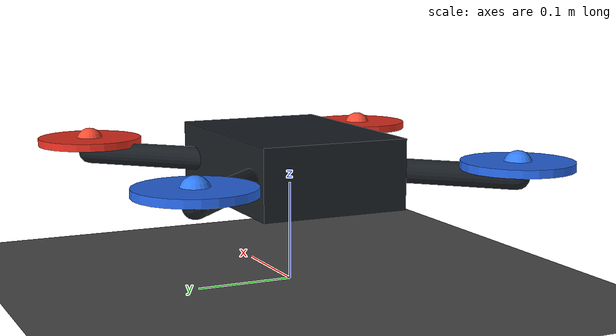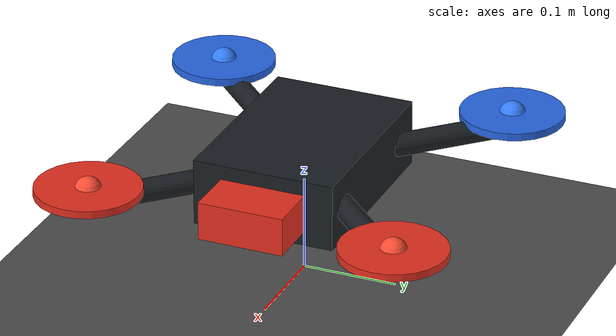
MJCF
<mujoco model="minimal_x_quadrotor_m1">
  <compiler angle="degree" autolimits="true"/>
  <!-- 控制迴圈與物理積分共用 0.002 s timestep，也就是 500 Hz。 -->
  <!-- M1：density/viscosity 啟用 MuJoCo 內建流體交互（等效橢球近似），
       對所有機體 geom 施加與速度反向的阻力與黏性項；不含槳葉尾流、
       地面效應或升力模型。這只是溫和的空氣阻尼，不是精確氣動模型。 -->
  <option timestep="0.002" gravity="0 0 -9.81" integrator="RK4"
          density="1.2" viscosity="1.8e-5"/>

  <visual>
    <headlight ambient="0.35 0.35 0.35" diffuse="0.75 0.75 0.75" specular="0.2 0.2 0.2"/>
    <rgba haze="0.15 0.25 0.35 1"/>
    <global azimuth="135" elevation="-22"/>
  </visual>

  <asset>
    <texture name="sky" type="skybox" builtin="gradient" rgb1="0.18 0.28 0.40" rgb2="0.02 0.03 0.05" width="512" height="3072"/>
    <texture name="grid" type="2d" builtin="checker" rgb1="0.25 0.25 0.25" rgb2="0.35 0.35 0.35" width="512" height="512"/>
    <material name="ground_material" texture="grid" texrepeat="10 10" reflectance="0.08"/>
    <material name="carbon" rgba="0.10 0.12 0.14 1"/>
    <material name="front" rgba="0.90 0.18 0.12 1"/>
    <material name="rear" rgba="0.15 0.40 0.90 1"/>
  </asset>

  <worldbody>
    <light pos="0 0 5" dir="0 0 -1" directional="true"/>
    <geom name="ground" type="plane" size="12 12 0.1" material="ground_material" friction="1 0.005 0.0001"/>

    <!-- 機體座標：+X 朝紅色機鼻、+Y 朝左、+Z 朝上；控制器也遵守此約定。 -->
    <body name="quadrotor" pos="0 0 0.12">
      <freejoint name="root"/>
      <!-- 明確指定 1 kg 質量與主軸慣量，避免 MuJoCo 從外觀 geom 反推。 -->
      <inertial pos="0 0 0" mass="1.0" diaginertia="0.018 0.018 0.030"/>

      <geom name="fuselage" type="box" size="0.105 0.075 0.035" material="carbon"/>
      <geom name="arm_fl_rr" type="capsule" fromto="-0.163 -0.163 0 0.163 0.163 0" size="0.012" material="carbon"/>
      <geom name="arm_fr_rl" type="capsule" fromto="-0.163 0.163 0 0.163 -0.163 0" size="0.012" material="carbon"/>

      <!-- 紅色機鼻只用於辨認 +X，方便觀察 WASD 是否依當前 yaw 移動。 -->
      <geom name="nose" type="box" pos="0.125 0 0" size="0.035 0.045 0.020" material="front"/>

      <!-- prop_* 只負責外觀；真正的力施加在下方同位置的 rotor_*_site。 -->
      <geom name="prop_fl" type="cylinder" pos="0.163 0.163 0.012" size="0.055 0.004" material="front" contype="0" conaffinity="0"/>
      <geom name="prop_fr" type="cylinder" pos="0.163 -0.163 0.012" size="0.055 0.004" material="front" contype="0" conaffinity="0"/>
      <geom name="prop_rr" type="cylinder" pos="-0.163 -0.163 0.012" size="0.055 0.004" material="rear" contype="0" conaffinity="0"/>
      <geom name="prop_rl" type="cylinder" pos="-0.163 0.163 0.012" size="0.055 0.004" material="rear" contype="0" conaffinity="0"/>

      <site name="rotor_fl_site" pos="0.163 0.163 0.012" size="0.014" rgba="1 0.3 0.2 1"/>
      <site name="rotor_fr_site" pos="0.163 -0.163 0.012" size="0.014" rgba="1 0.3 0.2 1"/>
      <site name="rotor_rr_site" pos="-0.163 -0.163 0.012" size="0.014" rgba="0.2 0.5 1 1"/>
      <site name="rotor_rl_site" pos="-0.163 0.163 0.012" size="0.014" rgba="0.2 0.5 1 1"/>
    </body>
  </worldbody>

  <actuator>
    <general name="rotor_fl" site="rotor_fl_site" gear="0 0 1 0 0 0.018" ctrlrange="0 8"
             dyntype="filterexact" dynprm="0.040 0 0" gaintype="fixed" biastype="none"/>
    <general name="rotor_fr" site="rotor_fr_site" gear="0 0 1 0 0 -0.018" ctrlrange="0 8"
             dyntype="filterexact" dynprm="0.040 0 0" gaintype="fixed" biastype="none"/>
    <general name="rotor_rr" site="rotor_rr_site" gear="0 0 1 0 0 0.018" ctrlrange="0 8"
             dyntype="filterexact" dynprm="0.040 0 0" gaintype="fixed" biastype="none"/>
    <general name="rotor_rl" site="rotor_rl_site" gear="0 0 1 0 0 -0.018" ctrlrange="0 8"
             dyntype="filterexact" dynprm="0.040 0 0" gaintype="fixed" biastype="none"/>
  </actuator>
</mujoco>
